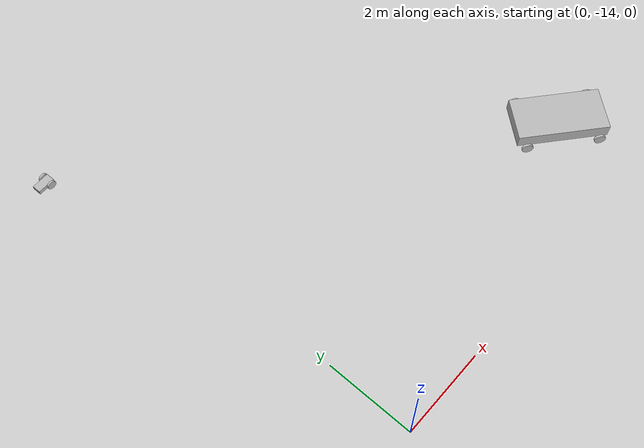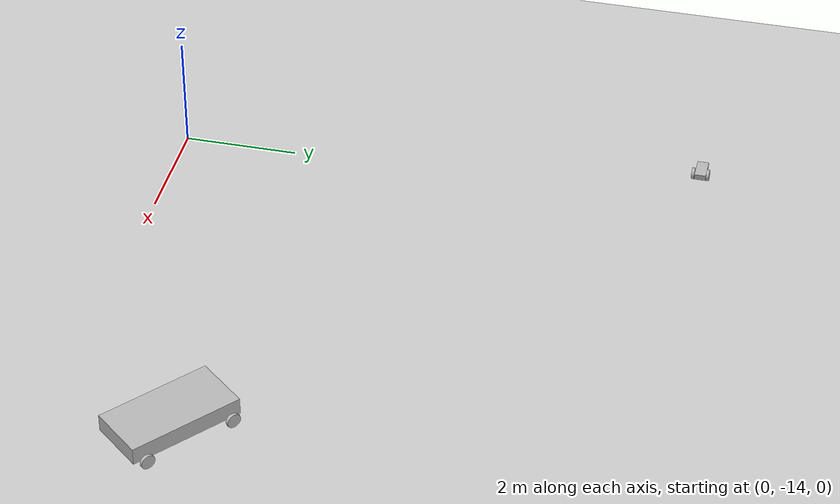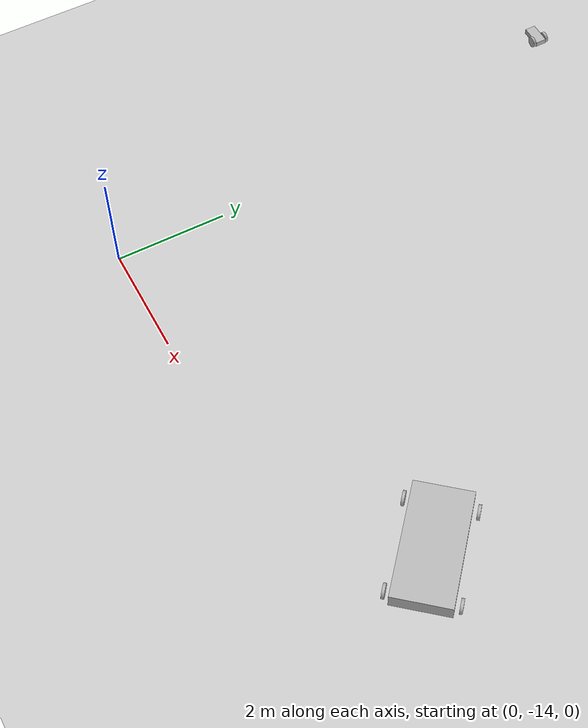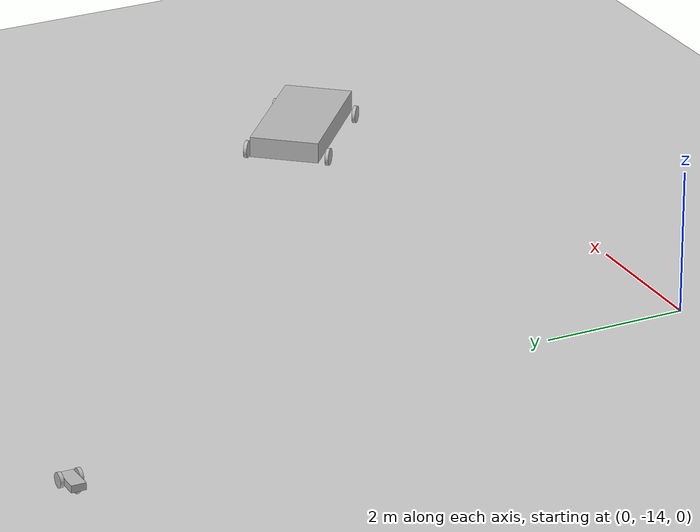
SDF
<sdf version="1.6">
 <world name="default">
  <model name="ground_plane">
   <static>1</static>
   <link name="link">
    <collision name="collision">
     <geometry><plane><normal>0 0 1</normal><size>100 100</size></plane></geometry>
     <surface><friction><ode><mu>100</mu><mu2>50</mu2></ode></friction></surface>
    </collision>
    <visual name="visual">
     <cast_shadows>0</cast_shadows>
     <geometry><plane><normal>0 0 1</normal><size>100 100</size></plane></geometry>
     <material>
      <script><uri>file://media/materials/scripts/gazebo.material</uri><name>Gazebo/Grey</name></script>
     </material>
    </visual>
   </link>
  </model>
  <light name="sun" type="directional">
   <pose>0 0 10 0 -0 0</pose>
   <diffuse>0.8 0.8 0.8 1</diffuse>
   <specular>0.2 0.2 0.2 1</specular>
   <attenuation>
    <range>1000</range>
    <constant>0.9</constant>
    <linear>0.01</linear>
    <quadratic>0.001</quadratic>
   </attenuation>
   <direction>-0.5 0.1 -0.9</direction>
  </light>
  <gravity>0 0 -9.8</gravity>
  <magnetic_field>6e-06 2.3e-05 -4.2e-05</magnetic_field>
  <atmosphere type="adiabatic"/>
  <physics name="default_physics" default="0" type="ode">
   <max_step_size>0.001</max_step_size>
   <real_time_factor>1</real_time_factor>
   <real_time_update_rate>1000</real_time_update_rate>
  </physics>
  <scene><ambient>0.4 0.4 0.4 1</ambient><background>0.7 0.7 0.7 1</background><shadows>1</shadows></scene>
  <spherical_coordinates>
   <surface_model>EARTH_WGS84</surface_model>
   <latitude_deg>0</latitude_deg>
   <longitude_deg>0</longitude_deg>
   <elevation>0</elevation>
   <heading_deg>0</heading_deg>
  </spherical_coordinates>
  <model name="robot_tutorial">
   <static>1</static>
   <link name="chassis">
    <pose>0 0 0.25 0 -0 0</pose>
    <inertial>
     <mass>20</mass>
     <pose>-0.1 0 -0.1 0 -0 0</pose>
     <inertia><ixx>0.5</ixx><iyy>1</iyy><izz>0.1</izz><ixy>0</ixy><ixz>0</ixz><iyz>0</iyz></inertia>
    </inertial>
    <collision name="collision"><geometry><box><size>2 1 0.3</size></box></geometry></collision>
    <visual name="visual"><geometry><box><size>2 1 0.3</size></box></geometry></visual>
   </link>
   <link name="front_left_wheel">
    <pose>0.8 0.6 0.125 -0 1.5707 1.5707</pose>
    <collision name="collision">
     <geometry><cylinder><radius>0.125</radius><length>0.05</length></cylinder></geometry>
    </collision>
    <visual name="visual">
     <geometry><cylinder><radius>0.125</radius><length>0.05</length></cylinder></geometry>
    </visual>
   </link>
   <link name="front_right_wheel">
    <pose>0.8 -0.6 0.125 -0 1.5707 1.5707</pose>
    <collision name="collision">
     <geometry><cylinder><radius>0.125</radius><length>0.05</length></cylinder></geometry>
    </collision>
    <visual name="visual">
     <geometry><cylinder><radius>0.125</radius><length>0.05</length></cylinder></geometry>
    </visual>
   </link>
   <link name="rear_left_wheel">
    <pose>-0.8 0.6 0.125 -0 1.5707 1.5707</pose>
    <collision name="collision">
     <geometry><cylinder><radius>0.125</radius><length>0.05</length></cylinder></geometry>
    </collision>
    <visual name="visual">
     <geometry><cylinder><radius>0.125</radius><length>0.05</length></cylinder></geometry>
    </visual>
   </link>
   <link name="rear_right_wheel">
    <pose>-0.8 -0.6 0.125 -0 1.5707 1.5707</pose>
    <collision name="collision">
     <geometry><cylinder><radius>0.125</radius><length>0.05</length></cylinder></geometry>
    </collision>
    <visual name="visual">
     <geometry><cylinder><radius>0.125</radius><length>0.05</length></cylinder></geometry>
    </visual>
   </link>
   <link name="camera::link">
    <inertial>
     <mass>0.1</mass>
     <inertia>
      <ixx>0.000166667</ixx>
      <iyy>0.000166667</iyy>
      <izz>0.000166667</izz>
      <ixy>0</ixy>
      <ixz>0</ixz>
      <iyz>0</iyz>
     </inertia>
    </inertial>
    <collision name="collision"><geometry><box><size>0.1 0.1 0.1</size></box></geometry></collision>
    <visual name="visual"><geometry><box><size>0.1 0.1 0.1</size></box></geometry></visual>
    <sensor name="camera" type="camera">
     <camera name="__default__">
      <horizontal_fov>1.047</horizontal_fov>
      <image><width>320</width><height>240</height></image>
      <clip><near>0.1</near><far>100</far></clip>
     </camera>
     <always_on>1</always_on>
     <update_rate>30</update_rate>
     <visualize>1</visualize>
    </sensor>
    <pose>0.2 0 0.2 0 -0 0</pose>
   </link>
   <joint name="hokuyo_joint" type="fixed"><child>hokuyo::link</child><parent>chassis</parent></joint>
   <joint name="f_left_wheel_hinge" type="revolute">
    <pose>0 0 -0.03 0 -0 0</pose>
    <child>front_left_wheel</child>
    <parent>chassis</parent>
    <axis>
     <xyz>0 1 0</xyz>
     <use_parent_model_frame>0</use_parent_model_frame>
     <limit><lower>-1e+16</lower><upper>1e+16</upper></limit>
     <dynamics><spring_reference>0</spring_reference><spring_stiffness>0</spring_stiffness></dynamics>
    </axis>
   </joint>
   <joint name="f_right_wheel_hinge" type="revolute">
    <pose>0 0 0.03 0 -0 0</pose>
    <child>front_right_wheel</child>
    <parent>chassis</parent>
    <axis>
     <xyz>0 1 0</xyz>
     <use_parent_model_frame>0</use_parent_model_frame>
     <limit><lower>-1e+16</lower><upper>1e+16</upper></limit>
     <dynamics><spring_reference>0</spring_reference><spring_stiffness>0</spring_stiffness></dynamics>
    </axis>
   </joint>
   <joint name="r_left_wheel_hinge" type="revolute">
    <pose>0 0 -0.03 0 -0 0</pose>
    <child>rear_left_wheel</child>
    <parent>chassis</parent>
    <axis>
     <xyz>0 1 0</xyz>
     <use_parent_model_frame>0</use_parent_model_frame>
     <limit><lower>-1e+16</lower><upper>1e+16</upper></limit>
     <dynamics><spring_reference>0</spring_reference><spring_stiffness>0</spring_stiffness></dynamics>
    </axis>
   </joint>
   <joint name="r_right_wheel_hinge" type="revolute">
    <pose>0 0 0.03 0 -0 0</pose>
    <child>rear_right_wheel</child>
    <parent>chassis</parent>
    <axis>
     <xyz>0 1 0</xyz>
     <use_parent_model_frame>0</use_parent_model_frame>
     <limit><lower>-1e+16</lower><upper>1e+16</upper></limit>
     <dynamics><spring_reference>0</spring_reference><spring_stiffness>0</spring_stiffness></dynamics>
    </axis>
   </joint>
   <pose>7.44754 -12.0397 0 0 -0 2.43705</pose>
  </model>
  <model name="robot_tutorial_0">
   <static>0</static>
   <link name="chassis">
    <pose>0 0 0.1 0 -0 0</pose>
    <collision name="collision"><geometry><box><size>0.4 0.2 0.1</size></box></geometry></collision>
    <visual name="visual"><geometry><box><size>0.4 0.2 0.1</size></box></geometry></visual>
    <collision name="caster_collision">
     <pose>-0.15 0 -0.05 0 -0 0</pose>
     <geometry><sphere><radius>0.05</radius></sphere></geometry>
     <surface><friction><ode><mu>0</mu><mu2>0</mu2><slip1>1</slip1><slip2>1</slip2></ode></friction></surface>
    </collision>
    <visual name="caster_visual">
     <pose>-0.15 0 -0.05 0 -0 0</pose>
     <geometry><sphere><radius>0.05</radius></sphere></geometry>
    </visual>
    <inertial>
     <inertia><ixx>1</ixx><ixy>0</ixy><ixz>0</ixz><iyy>1</iyy><iyz>0</iyz><izz>1</izz></inertia>
     <mass>1</mass>
    </inertial>
   </link>
   <link name="left_wheel">
    <pose>0.1 0.13 0.1 -0 1.5707 1.5707</pose>
    <collision name="collision">
     <geometry><cylinder><radius>0.1</radius><length>0.05</length></cylinder></geometry>
    </collision>
    <visual name="visual">
     <geometry><cylinder><radius>0.1</radius><length>0.05</length></cylinder></geometry>
    </visual>
    <inertial>
     <inertia><ixx>1</ixx><ixy>0</ixy><ixz>0</ixz><iyy>1</iyy><iyz>0</iyz><izz>1</izz></inertia>
     <mass>1</mass>
    </inertial>
   </link>
   <link name="right_wheel">
    <pose>0.1 -0.13 0.1 -0 1.5707 1.5707</pose>
    <collision name="collision">
     <geometry><cylinder><radius>0.1</radius><length>0.05</length></cylinder></geometry>
    </collision>
    <visual name="visual">
     <geometry><cylinder><radius>0.1</radius><length>0.05</length></cylinder></geometry>
    </visual>
    <inertial>
     <inertia><ixx>1</ixx><ixy>0</ixy><ixz>0</ixz><iyy>1</iyy><iyz>0</iyz><izz>1</izz></inertia>
     <mass>1</mass>
    </inertial>
   </link>
   <joint name="left_wheel_hinge" type="revolute">
    <pose>0 0 -0.03 0 -0 0</pose>
    <child>left_wheel</child>
    <parent>chassis</parent>
    <axis>
     <xyz>0 1 0</xyz>
     <use_parent_model_frame>1</use_parent_model_frame>
     <limit><lower>-1e+16</lower><upper>1e+16</upper></limit>
     <dynamics><spring_reference>0</spring_reference><spring_stiffness>0</spring_stiffness></dynamics>
    </axis>
   </joint>
   <joint name="right_wheel_hinge" type="revolute">
    <pose>0 0 0.03 0 -0 0</pose>
    <child>right_wheel</child>
    <parent>chassis</parent>
    <axis>
     <xyz>0 1 0</xyz>
     <use_parent_model_frame>1</use_parent_model_frame>
     <limit><lower>-1e+16</lower><upper>1e+16</upper></limit>
     <dynamics><spring_reference>0</spring_reference><spring_stiffness>0</spring_stiffness></dynamics>
    </axis>
   </joint>
   <pose>-0.98787 -4.83115 4e-06 3e-06 1.3e-05 0.001798</pose>
  </model>
 </world>
</sdf>
